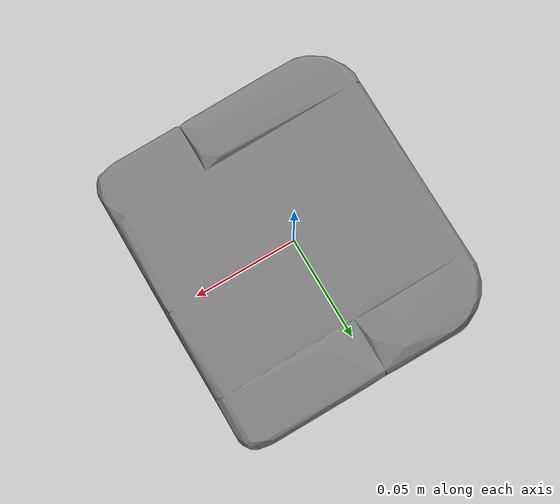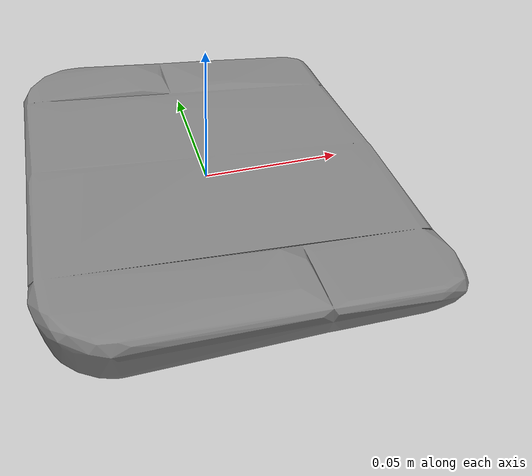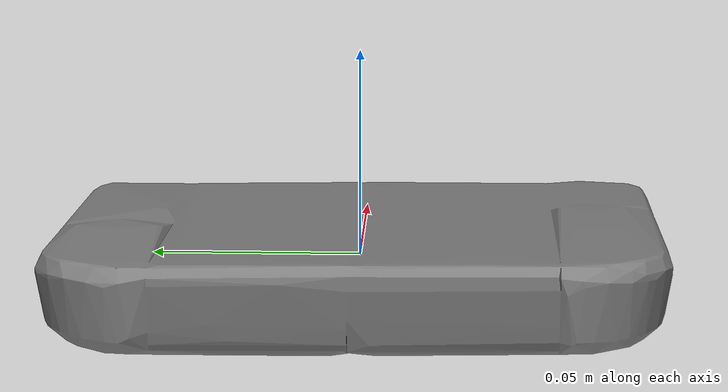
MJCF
<mujoco model="handheld_game_console_Nintendo_2DS_Crimson_Red_M">
  <default>
    <default class="visual">
      <geom group="2" type="mesh" contype="0" conaffinity="0" />
    </default>
    <default class="collision">
      <geom group="3" type="mesh" />
    </default>
  </default>
  <asset>
    <mesh file="handheld_game_console_Nintendo_2DS_Crimson_Red_M.stl" />
    <mesh file="handheld_game_console_Nintendo_2DS_Crimson_Red_M_collision_0.stl" />
    <mesh file="handheld_game_console_Nintendo_2DS_Crimson_Red_M_collision_1.stl" />
    <mesh file="handheld_game_console_Nintendo_2DS_Crimson_Red_M_collision_2.stl" />
    <mesh file="handheld_game_console_Nintendo_2DS_Crimson_Red_M_collision_3.stl" />
    <mesh file="handheld_game_console_Nintendo_2DS_Crimson_Red_M_collision_4.stl" />
    <mesh file="handheld_game_console_Nintendo_2DS_Crimson_Red_M_collision_5.stl" />
    <mesh file="handheld_game_console_Nintendo_2DS_Crimson_Red_M_collision_6.stl" />
    <mesh file="handheld_game_console_Nintendo_2DS_Crimson_Red_M_collision_7.stl" />
    <mesh file="handheld_game_console_Nintendo_2DS_Crimson_Red_M_collision_8.stl" />
    <mesh file="handheld_game_console_Nintendo_2DS_Crimson_Red_M_collision_9.stl" />
    <mesh file="handheld_game_console_Nintendo_2DS_Crimson_Red_M_collision_10.stl" />
    <mesh file="handheld_game_console_Nintendo_2DS_Crimson_Red_M_collision_11.stl" />
    <mesh file="handheld_game_console_Nintendo_2DS_Crimson_Red_M_collision_12.stl" />
    <mesh file="handheld_game_console_Nintendo_2DS_Crimson_Red_M_collision_13.stl" />
    <mesh file="handheld_game_console_Nintendo_2DS_Crimson_Red_M_collision_14.stl" />
    <mesh file="handheld_game_console_Nintendo_2DS_Crimson_Red_M_collision_15.stl" />
  </asset>
  <worldbody>
    <body name="handheld_game_console_Nintendo_2DS_Crimson_Red_M">
      <geom mesh="handheld_game_console_Nintendo_2DS_Crimson_Red_M" class="visual" />
      <geom mesh="handheld_game_console_Nintendo_2DS_Crimson_Red_M_collision_0" class="collision" />
      <geom mesh="handheld_game_console_Nintendo_2DS_Crimson_Red_M_collision_1" class="collision" />
      <geom mesh="handheld_game_console_Nintendo_2DS_Crimson_Red_M_collision_2" class="collision" />
      <geom mesh="handheld_game_console_Nintendo_2DS_Crimson_Red_M_collision_3" class="collision" />
      <geom mesh="handheld_game_console_Nintendo_2DS_Crimson_Red_M_collision_4" class="collision" />
      <geom mesh="handheld_game_console_Nintendo_2DS_Crimson_Red_M_collision_5" class="collision" />
      <geom mesh="handheld_game_console_Nintendo_2DS_Crimson_Red_M_collision_6" class="collision" />
      <geom mesh="handheld_game_console_Nintendo_2DS_Crimson_Red_M_collision_7" class="collision" />
      <geom mesh="handheld_game_console_Nintendo_2DS_Crimson_Red_M_collision_8" class="collision" />
      <geom mesh="handheld_game_console_Nintendo_2DS_Crimson_Red_M_collision_9" class="collision" />
      <geom mesh="handheld_game_console_Nintendo_2DS_Crimson_Red_M_collision_10" class="collision" />
      <geom mesh="handheld_game_console_Nintendo_2DS_Crimson_Red_M_collision_11" class="collision" />
      <geom mesh="handheld_game_console_Nintendo_2DS_Crimson_Red_M_collision_12" class="collision" />
      <geom mesh="handheld_game_console_Nintendo_2DS_Crimson_Red_M_collision_13" class="collision" />
      <geom mesh="handheld_game_console_Nintendo_2DS_Crimson_Red_M_collision_14" class="collision" />
      <geom mesh="handheld_game_console_Nintendo_2DS_Crimson_Red_M_collision_15" class="collision" />
    </body>
  </worldbody>
</mujoco>
